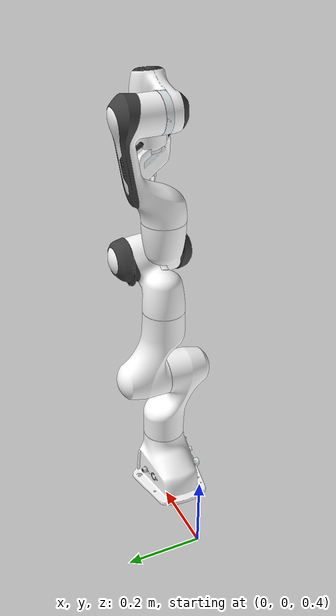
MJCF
<mujoco>
  <default>
    <default class="franka/">
      <default class="franka/panda">
        <material specular="0.5" shininess="0.25" />
        <joint axis="0 0 1" range="-2.8973 2.8973" armature="0.10000000000000001" damping="1" />
        <general ctrlrange="-2.8973 2.8973" forcerange="-87 87" dyntype="none" biastype="affine" />
        <default class="franka/finger">
          <joint type="slide" axis="0 1 0" range="0 0.040000000000000001" />
        </default>
        <default class="franka/visual">
          <geom type="mesh" contype="0" conaffinity="0" group="2" />
        </default>
        <default class="franka/collision">
          <geom type="mesh" group="3" />
          <default class="franka/fingertip_pad_collision_1">
            <geom type="box"
              size="0.0095000000000000007 0.0060000000000000001 0.010000000000000001"
              pos="0 0.0054999999999999997 0.044499999999999998"
              contype="1" conaffinity="2" solref="0.004 1" solimp="0.998 0.998 0.001"
              friction="2 0.005 0.0001" />
          </default>
          <default class="franka/fingertip_pad_collision_2">
            <geom type="box"
              size="0.0035000000000000001 0.0030000000000000001 0.0035000000000000001"
              pos="0.0054999999999999997 0.002 0.050000000000000003"
              contype="1" conaffinity="2" solref="0.004 1" solimp="0.998 0.998 0.001"
              friction="2 0.005 0.0001" />
          </default>
          <default class="franka/fingertip_pad_collision_3">
            <geom type="box"
              size="0.0035000000000000001 0.0030000000000000001 0.0035000009999999999"
              pos="-0.0054999999999999997 0.002 0.050000000000000003"
              contype="1" conaffinity="2" solref="0.004 1" solimp="0.998 0.998 0.001"
              friction="2 0.005 0.0001" />
          </default>
          <default class="franka/fingertip_pad_collision_4">
            <geom type="box"
              size="0.0035000000000000001 0.0030000000000000001 0.0045000000000000005"
              pos="0.0054999999999999997 0.002 0.0395"
              contype="1" conaffinity="2" solref="0.004 1" solimp="0.998 0.998 0.001"
              friction="2 0.005 0.0001" />
          </default>
          <default class="franka/fingertip_pad_collision_5">
            <geom type="box"
              size="0.0035000000000000001 0.0030000000000000001 0.0045000009999999998"
              pos="-0.0054999999999999997 0.002 0.0395"
              contype="1" conaffinity="2" solref="0.004 1" solimp="0.998 0.998 0.001"
              friction="2 0.005 0.0001" />
          </default>
        </default>
      </default>
    </default>
  </default>
  <asset>
    <material name="franka/white" class="franka/panda" rgba="1 1 1 1" />
    <material name="franka/off_white" class="franka/panda"
      rgba="0.90196100000000001 0.92156899999999997 0.92941200000000002 1" />
    <material name="franka/black" class="franka/panda" rgba="0.25 0.25 0.25 1" />
    <material name="franka/green" class="franka/panda" rgba="0 1 0 1" />
    <material name="franka/light_blue" class="franka/panda"
      rgba="0.039216000000000001 0.54117599999999999 0.78039199999999997 1" />
    <mesh name="franka/link0_c" class="franka/" file="../robots/franka_emika_panda/assets/link0.stl" />
    <mesh name="franka/link1_c" class="franka/" file="../robots/franka_emika_panda/assets/link1.stl" />
    <mesh name="franka/link2_c" class="franka/" file="../robots/franka_emika_panda/assets/link2.stl" />
    <mesh name="franka/link3_c" class="franka/" file="../robots/franka_emika_panda/assets/link3.stl" />
    <mesh name="franka/link4_c" class="franka/" file="../robots/franka_emika_panda/assets/link4.stl" />
    <mesh name="franka/link5_c0" class="franka/"
      file="../robots/franka_emika_panda/assets/link5_collision_0.obj" />
    <mesh name="franka/link5_c1" class="franka/"
      file="../robots/franka_emika_panda/assets/link5_collision_1.obj" />
    <mesh name="franka/link5_c2" class="franka/"
      file="../robots/franka_emika_panda/assets/link5_collision_2.obj" />
    <mesh name="franka/link6_c" class="franka/" file="../robots/franka_emika_panda/assets/link6.stl" />
    <mesh name="franka/link7_c" class="franka/" file="../robots/franka_emika_panda/assets/link7.stl" />
    <mesh name="franka/hand_c" class="franka/" file="../robots/franka_emika_panda/assets/hand.stl" />
    <mesh name="franka/link0_0" class="franka/"
      file="../robots/franka_emika_panda/assets/link0_0.obj" />
    <mesh name="franka/link0_1" class="franka/"
      file="../robots/franka_emika_panda/assets/link0_1.obj" />
    <mesh name="franka/link0_2" class="franka/"
      file="../robots/franka_emika_panda/assets/link0_2.obj" />
    <mesh name="franka/link0_3" class="franka/"
      file="../robots/franka_emika_panda/assets/link0_3.obj" />
    <mesh name="franka/link0_4" class="franka/"
      file="../robots/franka_emika_panda/assets/link0_4.obj" />
    <mesh name="franka/link0_5" class="franka/"
      file="../robots/franka_emika_panda/assets/link0_5.obj" />
    <mesh name="franka/link0_7" class="franka/"
      file="../robots/franka_emika_panda/assets/link0_7.obj" />
    <mesh name="franka/link0_8" class="franka/"
      file="../robots/franka_emika_panda/assets/link0_8.obj" />
    <mesh name="franka/link0_9" class="franka/"
      file="../robots/franka_emika_panda/assets/link0_9.obj" />
    <mesh name="franka/link0_10" class="franka/"
      file="../robots/franka_emika_panda/assets/link0_10.obj" />
    <mesh name="franka/link0_11" class="franka/"
      file="../robots/franka_emika_panda/assets/link0_11.obj" />
    <mesh name="franka/link1" class="franka/" file="../robots/franka_emika_panda/assets/link1.obj" />
    <mesh name="franka/link2" class="franka/" file="../robots/franka_emika_panda/assets/link2.obj" />
    <mesh name="franka/link3_0" class="franka/"
      file="../robots/franka_emika_panda/assets/link3_0.obj" />
    <mesh name="franka/link3_1" class="franka/"
      file="../robots/franka_emika_panda/assets/link3_1.obj" />
    <mesh name="franka/link3_2" class="franka/"
      file="../robots/franka_emika_panda/assets/link3_2.obj" />
    <mesh name="franka/link3_3" class="franka/"
      file="../robots/franka_emika_panda/assets/link3_3.obj" />
    <mesh name="franka/link4_0" class="franka/"
      file="../robots/franka_emika_panda/assets/link4_0.obj" />
    <mesh name="franka/link4_1" class="franka/"
      file="../robots/franka_emika_panda/assets/link4_1.obj" />
    <mesh name="franka/link4_2" class="franka/"
      file="../robots/franka_emika_panda/assets/link4_2.obj" />
    <mesh name="franka/link4_3" class="franka/"
      file="../robots/franka_emika_panda/assets/link4_3.obj" />
    <mesh name="franka/link5_0" class="franka/"
      file="../robots/franka_emika_panda/assets/link5_0.obj" />
    <mesh name="franka/link5_1" class="franka/"
      file="../robots/franka_emika_panda/assets/link5_1.obj" />
    <mesh name="franka/link5_2" class="franka/"
      file="../robots/franka_emika_panda/assets/link5_2.obj" />
    <mesh name="franka/link6_0" class="franka/"
      file="../robots/franka_emika_panda/assets/link6_0.obj" />
    <mesh name="franka/link6_1" class="franka/"
      file="../robots/franka_emika_panda/assets/link6_1.obj" />
    <mesh name="franka/link6_2" class="franka/"
      file="../robots/franka_emika_panda/assets/link6_2.obj" />
    <mesh name="franka/link6_3" class="franka/"
      file="../robots/franka_emika_panda/assets/link6_3.obj" />
    <mesh name="franka/link6_4" class="franka/"
      file="../robots/franka_emika_panda/assets/link6_4.obj" />
    <mesh name="franka/link6_5" class="franka/"
      file="../robots/franka_emika_panda/assets/link6_5.obj" />
    <mesh name="franka/link6_6" class="franka/"
      file="../robots/franka_emika_panda/assets/link6_6.obj" />
    <mesh name="franka/link6_7" class="franka/"
      file="../robots/franka_emika_panda/assets/link6_7.obj" />
    <mesh name="franka/link6_8" class="franka/"
      file="../robots/franka_emika_panda/assets/link6_8.obj" />
    <mesh name="franka/link6_9" class="franka/"
      file="../robots/franka_emika_panda/assets/link6_9.obj" />
    <mesh name="franka/link6_10" class="franka/"
      file="../robots/franka_emika_panda/assets/link6_10.obj" />
    <mesh name="franka/link6_11" class="franka/"
      file="../robots/franka_emika_panda/assets/link6_11.obj" />
    <mesh name="franka/link6_12" class="franka/"
      file="../robots/franka_emika_panda/assets/link6_12.obj" />
    <mesh name="franka/link6_13" class="franka/"
      file="../robots/franka_emika_panda/assets/link6_13.obj" />
    <mesh name="franka/link6_14" class="franka/"
      file="../robots/franka_emika_panda/assets/link6_14.obj" />
    <mesh name="franka/link6_15" class="franka/"
      file="../robots/franka_emika_panda/assets/link6_15.obj" />
    <mesh name="franka/link6_16" class="franka/"
      file="../robots/franka_emika_panda/assets/link6_16.obj" />
    <mesh name="franka/link7_0" class="franka/"
      file="../robots/franka_emika_panda/assets/link7_0.obj" />
    <mesh name="franka/link7_1" class="franka/"
      file="../robots/franka_emika_panda/assets/link7_1.obj" />
    <mesh name="franka/link7_2" class="franka/"
      file="../robots/franka_emika_panda/assets/link7_2.obj" />
    <mesh name="franka/link7_3" class="franka/"
      file="../robots/franka_emika_panda/assets/link7_3.obj" />
    <mesh name="franka/link7_4" class="franka/"
      file="../robots/franka_emika_panda/assets/link7_4.obj" />
    <mesh name="franka/link7_5" class="franka/"
      file="../robots/franka_emika_panda/assets/link7_5.obj" />
    <mesh name="franka/link7_6" class="franka/"
      file="../robots/franka_emika_panda/assets/link7_6.obj" />
    <mesh name="franka/link7_7" class="franka/"
      file="../robots/franka_emika_panda/assets/link7_7.obj" />
    <mesh name="franka/hand_0" class="franka/" file="../robots/franka_emika_panda/assets/hand_0.obj" />
    <mesh name="franka/hand_1" class="franka/" file="../robots/franka_emika_panda/assets/hand_1.obj" />
    <mesh name="franka/hand_2" class="franka/" file="../robots/franka_emika_panda/assets/hand_2.obj" />
    <mesh name="franka/hand_3" class="franka/" file="../robots/franka_emika_panda/assets/hand_3.obj" />
    <mesh name="franka/hand_4" class="franka/" file="../robots/franka_emika_panda/assets/hand_4.obj" />
    <mesh name="franka/finger_0" class="franka/"
      file="../robots/franka_emika_panda/assets/finger_0.obj" />
    <mesh name="franka/finger_1" class="franka/"
      file="../robots/franka_emika_panda/assets/finger_1.obj" />
  </asset>
  <worldbody>
    <body pos="0.22 0 0.48" quat="1 0 0 0" name="franka/">
      <inertial pos="-0.041017999999999999 -0.00013999999999999999 0.049973999999999998"
        mass="1.0000000000000001e-09"
        diaginertia="1.0000000000000001e-09 1.0000000000000001e-09 1.0000000000000001e-09" />
      <body name="franka/panda_link0" childclass="franka/panda" pos="0 0 0">
        <inertial pos="-0.041017999999999999 -0.00013999999999999999 0.049973999999999998"
          mass="0.62976900000000002"
          fullinertia="0.00315 0.0038800000000000002 0.0042849999999999997 8.2903999999999996e-07 0.00014999999999999999 8.2299000000000006e-06" />
        <geom name="franka//unnamed_geom_0" class="franka/visual" material="franka/off_white"
          mesh="franka/link0_0" />
        <geom name="franka//unnamed_geom_1" class="franka/visual" material="franka/black"
          mesh="franka/link0_1" />
        <geom name="franka//unnamed_geom_2" class="franka/visual" material="franka/off_white"
          mesh="franka/link0_2" />
        <geom name="franka//unnamed_geom_3" class="franka/visual" material="franka/black"
          mesh="franka/link0_3" />
        <geom name="franka//unnamed_geom_4" class="franka/visual" material="franka/off_white"
          mesh="franka/link0_4" />
        <geom name="franka//unnamed_geom_5" class="franka/visual" material="franka/black"
          mesh="franka/link0_5" />
        <geom name="franka//unnamed_geom_6" class="franka/visual" material="franka/white"
          mesh="franka/link0_7" />
        <geom name="franka//unnamed_geom_7" class="franka/visual" material="franka/white"
          mesh="franka/link0_8" />
        <geom name="franka//unnamed_geom_8" class="franka/visual" material="franka/black"
          mesh="franka/link0_9" />
        <geom name="franka//unnamed_geom_9" class="franka/visual" material="franka/off_white"
          mesh="franka/link0_10" />
        <geom name="franka//unnamed_geom_10" class="franka/visual" material="franka/white"
          mesh="franka/link0_11" />
        <geom name="franka//unnamed_geom_11" class="franka/collision" mesh="franka/link0_c" />
        <body name="franka/panda_link1" pos="0 0 0.33300000000000002">
          <inertial pos="0.003875 0.002081 -0.047620000000000003" mass="4.9706840000000003"
            fullinertia="0.70337000000000005 0.70660999999999996 0.0091170000000000001 -0.00013899999999999999 0.0067720000000000002 0.019168999999999999" />
          <joint name="franka/panda_joint1" />
          <geom name="franka//unnamed_geom_12" class="franka/visual" material="franka/white"
            mesh="franka/link1" />
          <geom name="franka//unnamed_geom_13" class="franka/collision" mesh="franka/link1_c" />
          <body name="franka/panda_link2" quat="1 -1 0 0">
            <inertial pos="-0.0031410000000000001 -0.028719999999999999 0.0034949999999999998"
              mass="0.646926"
              fullinertia="0.0079620000000000003 0.02811 0.025995000000000001 -0.0039249999999999997 0.010253999999999999 0.00070399999999999998" />
            <joint name="franka/panda_joint2" range="-1.7627999999999999 1.7627999999999999" />
            <geom name="franka//unnamed_geom_14" class="franka/visual" material="franka/white"
              mesh="franka/link2" />
            <geom name="franka//unnamed_geom_15" class="franka/collision" mesh="franka/link2_c" />
            <body name="franka/panda_link3" pos="0 -0.316 0" quat="1 1 0 0">
              <joint name="franka/panda_joint3" />
              <inertial pos="0.027518000000000001 0.039252000000000002 -0.066502000000000006"
                mass="3.2286039999999998"
                fullinertia="0.037241999999999997 0.036155 0.010829999999999999 -0.0047609999999999996 -0.011396 -0.012805" />
              <geom name="franka//unnamed_geom_16" class="franka/visual" material="franka/white"
                mesh="franka/link3_0" />
              <geom name="franka//unnamed_geom_17" class="franka/visual" material="franka/white"
                mesh="franka/link3_1" />
              <geom name="franka//unnamed_geom_18" class="franka/visual" material="franka/white"
                mesh="franka/link3_2" />
              <geom name="franka//unnamed_geom_19" class="franka/visual" material="franka/black"
                mesh="franka/link3_3" />
              <geom name="franka//unnamed_geom_20" class="franka/collision" mesh="franka/link3_c" />
              <body name="franka/panda_link4" pos="0.082500000000000004 0 0" quat="1 1 0 0">
                <inertial pos="-0.053170000000000002 0.104419 0.027453999999999999"
                  mass="3.5878950000000001"
                  fullinertia="0.025853000000000001 0.019552 0.028323000000000001 0.007796 -0.0013320000000000001 0.0086409999999999994" />
                <joint name="franka/panda_joint4" range="-3.0718000000000001 -0.069800000000000001" />
                <geom name="franka//unnamed_geom_21" class="franka/visual" material="franka/white"
                  mesh="franka/link4_0" />
                <geom name="franka//unnamed_geom_22" class="franka/visual" material="franka/white"
                  mesh="franka/link4_1" />
                <geom name="franka//unnamed_geom_23" class="franka/visual" material="franka/black"
                  mesh="franka/link4_2" />
                <geom name="franka//unnamed_geom_24" class="franka/visual" material="franka/white"
                  mesh="franka/link4_3" />
                <geom name="franka//unnamed_geom_25" class="franka/collision" mesh="franka/link4_c" />
                <body name="franka/panda_link5" pos="-0.082500000000000004 0.38400000000000001 0"
                  quat="1 -1 0 0">
                  <inertial pos="-0.011953 0.041064999999999997 -0.038436999999999999"
                    mass="1.225946"
                    fullinertia="0.035548999999999997 0.029474 0.0086269999999999993 -0.002117 -0.0040369999999999998 0.00022900000000000001" />
                  <joint name="franka/panda_joint5" />
                  <geom name="franka//unnamed_geom_26" class="franka/visual" material="franka/black"
                    mesh="franka/link5_0" />
                  <geom name="franka//unnamed_geom_27" class="franka/visual" material="franka/white"
                    mesh="franka/link5_1" />
                  <geom name="franka//unnamed_geom_28" class="franka/visual" material="franka/white"
                    mesh="franka/link5_2" />
                  <geom name="franka//unnamed_geom_29" class="franka/collision"
                    mesh="franka/link5_c0" />
                  <geom name="franka//unnamed_geom_30" class="franka/collision"
                    mesh="franka/link5_c1" />
                  <geom name="franka//unnamed_geom_31" class="franka/collision"
                    mesh="franka/link5_c2" />
                  <body name="franka/panda_link6" quat="1 1 0 0">
                    <inertial pos="0.060149000000000001 -0.014116999999999999 -0.010517"
                      mass="1.666555"
                      fullinertia="0.001964 0.0043540000000000002 0.0054330000000000003 0.00010900000000000001 -0.001158 0.00034099999999999999" />
                    <joint name="franka/panda_joint6"
                      range="-0.017500000000000002 3.7524999999999999" />
                    <geom name="franka//unnamed_geom_32" class="franka/visual"
                      material="franka/off_white" mesh="franka/link6_0" />
                    <geom name="franka//unnamed_geom_33" class="franka/visual"
                      material="franka/white" mesh="franka/link6_1" />
                    <geom name="franka//unnamed_geom_34" class="franka/visual"
                      material="franka/black" mesh="franka/link6_2" />
                    <geom name="franka//unnamed_geom_35" class="franka/visual"
                      material="franka/white" mesh="franka/link6_3" />
                    <geom name="franka//unnamed_geom_36" class="franka/visual"
                      material="franka/white" mesh="franka/link6_4" />
                    <geom name="franka//unnamed_geom_37" class="franka/visual"
                      material="franka/white" mesh="franka/link6_5" />
                    <geom name="franka//unnamed_geom_38" class="franka/visual"
                      material="franka/white" mesh="franka/link6_6" />
                    <geom name="franka//unnamed_geom_39" class="franka/visual"
                      material="franka/light_blue" mesh="franka/link6_7" />
                    <geom name="franka//unnamed_geom_40" class="franka/visual"
                      material="franka/light_blue" mesh="franka/link6_8" />
                    <geom name="franka//unnamed_geom_41" class="franka/visual"
                      material="franka/black" mesh="franka/link6_9" />
                    <geom name="franka//unnamed_geom_42" class="franka/visual"
                      material="franka/black" mesh="franka/link6_10" />
                    <geom name="franka//unnamed_geom_43" class="franka/visual"
                      material="franka/white" mesh="franka/link6_11" />
                    <geom name="franka//unnamed_geom_44" class="franka/visual"
                      material="franka/green" mesh="franka/link6_12" />
                    <geom name="franka//unnamed_geom_45" class="franka/visual"
                      material="franka/white" mesh="franka/link6_13" />
                    <geom name="franka//unnamed_geom_46" class="franka/visual"
                      material="franka/black" mesh="franka/link6_14" />
                    <geom name="franka//unnamed_geom_47" class="franka/visual"
                      material="franka/black" mesh="franka/link6_15" />
                    <geom name="franka//unnamed_geom_48" class="franka/visual"
                      material="franka/white" mesh="franka/link6_16" />
                    <geom name="franka//unnamed_geom_49" class="franka/collision"
                      mesh="franka/link6_c" />
                    <body name="franka/panda_link7" pos="0.087999999999999995 0 0" quat="1 1 0 0">
                      <inertial pos="0.010517 -0.0042519999999999997 0.061596999999999999"
                        mass="0.73552200000000001"
                        fullinertia="0.012515999999999999 0.010026999999999999 0.0048149999999999998 -0.000428 -0.001196 -0.00074100000000000001" />
                      <joint name="franka/panda_joint7" />
                      <geom name="franka//unnamed_geom_50" class="franka/visual"
                        material="franka/white" mesh="franka/link7_0" />
                      <geom name="franka//unnamed_geom_51" class="franka/visual"
                        material="franka/black" mesh="franka/link7_1" />
                      <geom name="franka//unnamed_geom_52" class="franka/visual"
                        material="franka/black" mesh="franka/link7_2" />
                      <geom name="franka//unnamed_geom_53" class="franka/visual"
                        material="franka/black" mesh="franka/link7_3" />
                      <geom name="franka//unnamed_geom_54" class="franka/visual"
                        material="franka/black" mesh="franka/link7_4" />
                      <geom name="franka//unnamed_geom_55" class="franka/visual"
                        material="franka/black" mesh="franka/link7_5" />
                      <geom name="franka//unnamed_geom_56" class="franka/visual"
                        material="franka/black" mesh="franka/link7_6" />
                      <geom name="franka//unnamed_geom_57" class="franka/visual"
                        material="franka/white" mesh="franka/link7_7" />
                      <geom name="franka//unnamed_geom_58" class="franka/collision"
                        mesh="franka/link7_c" />
                      <body name="franka/panda_hand" pos="0 0 0.107"
                        quat="0.92387949999999996 0 0 -0.38268340000000001">
                        <inertial pos="-0.01 0 0.029999999999999999" mass="0.72999999999999998"
                          diaginertia="0.001 0.0025000000000000001 0.0016999999999999999" />
                        <geom name="franka//unnamed_geom_59" class="franka/visual"
                          material="franka/off_white" mesh="franka/hand_0" />
                        <geom name="franka//unnamed_geom_60" class="franka/visual"
                          material="franka/black" mesh="franka/hand_1" />
                        <geom name="franka//unnamed_geom_61" class="franka/visual"
                          material="franka/black" mesh="franka/hand_2" />
                        <geom name="franka//unnamed_geom_62" class="franka/visual"
                          material="franka/white" mesh="franka/hand_3" />
                        <geom name="franka//unnamed_geom_63" class="franka/visual"
                          material="franka/off_white" mesh="franka/hand_4" />
                        <geom name="franka//unnamed_geom_64" class="franka/collision"
                          mesh="franka/hand_c" />
                        <body name="franka/panda_leftfinger" pos="0 0 0.058400000000000001">
                          <inertial pos="0 0 0" mass="0.014999999999999999"
                            diaginertia="2.3750000000000001e-06 2.3750000000000001e-06 7.5000000000000002e-07" />
                          <joint name="franka/panda_finger_joint1" class="franka/finger" />
                          <geom name="franka//unnamed_geom_65" class="franka/visual"
                            material="franka/off_white" mesh="franka/finger_0" />
                          <geom name="franka//unnamed_geom_66" class="franka/visual"
                            material="franka/black" mesh="franka/finger_1" />
                          <geom name="franka//unnamed_geom_67" class="franka/collision"
                            mesh="franka/finger_0" />
                          <geom name="franka//unnamed_geom_68"
                            class="franka/fingertip_pad_collision_1" />
                          <geom name="franka//unnamed_geom_69"
                            class="franka/fingertip_pad_collision_2" />
                          <geom name="franka//unnamed_geom_70"
                            class="franka/fingertip_pad_collision_3" />
                          <geom name="franka//unnamed_geom_71"
                            class="franka/fingertip_pad_collision_4" />
                          <geom name="franka//unnamed_geom_72"
                            class="franka/fingertip_pad_collision_5" />
                        </body>
                        <body name="franka/panda_rightfinger" pos="0 0 0.058400000000000001"
                          quat="0 0 0 1">
                          <inertial pos="0 0 0" mass="0.014999999999999999"
                            diaginertia="2.3750000000000001e-06 2.3750000000000001e-06 7.5000000000000002e-07" />
                          <joint name="franka/panda_finger_joint2" class="franka/finger" />
                          <geom name="franka//unnamed_geom_73" class="franka/visual"
                            material="franka/off_white" mesh="franka/finger_0" />
                          <geom name="franka//unnamed_geom_74" class="franka/visual"
                            material="franka/black" mesh="franka/finger_1" />
                          <geom name="franka//unnamed_geom_75" class="franka/collision"
                            mesh="franka/finger_0" />
                          <geom name="franka//unnamed_geom_76"
                            class="franka/fingertip_pad_collision_1" />
                          <geom name="franka//unnamed_geom_77"
                            class="franka/fingertip_pad_collision_2" />
                          <geom name="franka//unnamed_geom_78"
                            class="franka/fingertip_pad_collision_3" />
                          <geom name="franka//unnamed_geom_79"
                            class="franka/fingertip_pad_collision_4" />
                          <geom name="franka//unnamed_geom_80"
                            class="franka/fingertip_pad_collision_5" />
                        </body>
                      </body>
                    </body>
                  </body>
                </body>
              </body>
            </body>
          </body>
        </body>
      </body>
    </body>
  </worldbody>
  <tendon>
    <fixed name="franka/split" class="franka/">
      <joint joint="franka/panda_finger_joint1" coef="0.5" />
      <joint joint="franka/panda_finger_joint2" coef="0.5" />
    </fixed>
  </tendon>
  <actuator>
    <general name="franka/panda_joint1" class="franka/" forcerange="-87 87"
      joint="franka/panda_joint1" biastype="affine" gainprm="4000 0 0" biasprm="0 -4000 -400" />
    <general name="franka/panda_joint2" class="franka/"
      ctrlrange="-1.7627999999999999 1.7627999999999999" forcerange="-87 87"
      joint="franka/panda_joint2" biastype="affine" gainprm="4000 0 0" biasprm="0 -4000 -400" />
    <general name="franka/panda_joint3" class="franka/" forcerange="-87 87"
      joint="franka/panda_joint3" biastype="affine" gainprm="4000 0 0" biasprm="0 -4000 -400" />
    <general name="franka/panda_joint4" class="franka/"
      ctrlrange="-3.0718000000000001 -0.069800000000000001" forcerange="-87 87"
      joint="franka/panda_joint4" biastype="affine" gainprm="4000 0 0" biasprm="0 -4000 -400" />
    <general name="franka/panda_joint5" class="franka/" forcerange="-87 87"
      joint="franka/panda_joint5" biastype="affine" gainprm="4000 0 0" biasprm="0 -4000 -400" />
    <general name="franka/panda_joint6" class="franka/"
      ctrlrange="-0.017500000000000002 3.7524999999999999" forcerange="-87 87"
      joint="franka/panda_joint6" biastype="affine" gainprm="4000 0 0" biasprm="0 -4000 -400" />
    <general name="franka/panda_joint7" class="franka/" forcerange="-87 87"
      joint="franka/panda_joint7" biastype="affine" gainprm="4000 0 0" biasprm="0 -4000 -400" />
    <position name="franka/panda_finger_joint1" class="franka/" ctrlrange="0 0.040000000000000001"
      forcerange="-2500 2500" joint="franka/panda_finger_joint1" kp="2000" kv="100" />
    <position name="franka/panda_finger_joint2" class="franka/" ctrlrange="0 0.040000000000000001"
      forcerange="-2500 2500" joint="franka/panda_finger_joint2" kp="2000" kv="100" />
  </actuator>
</mujoco>
